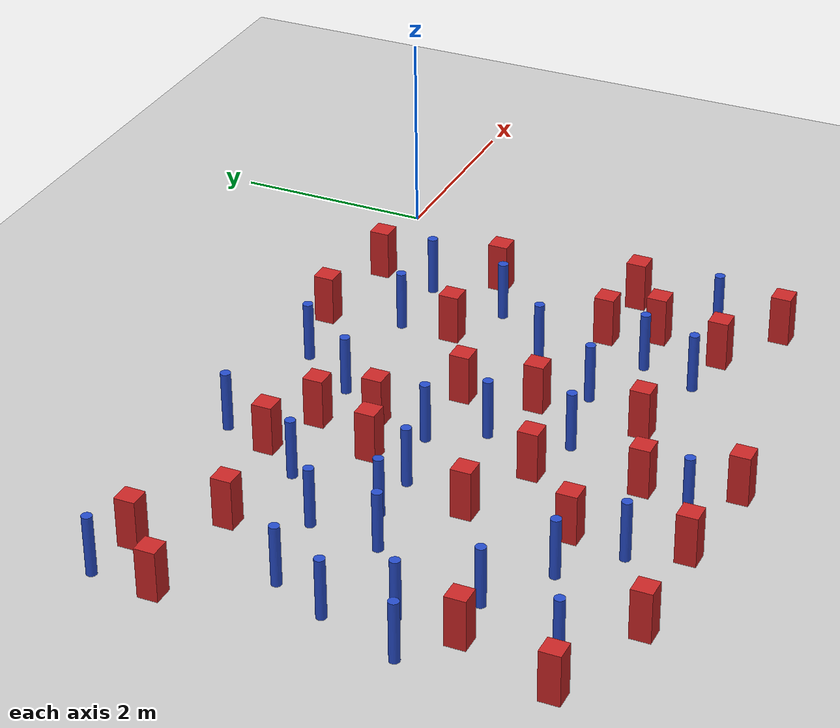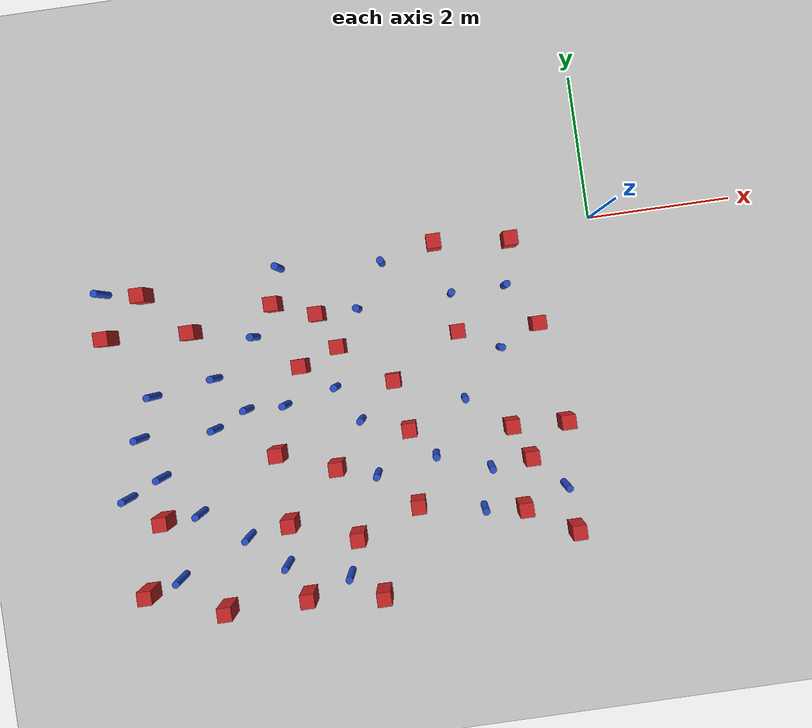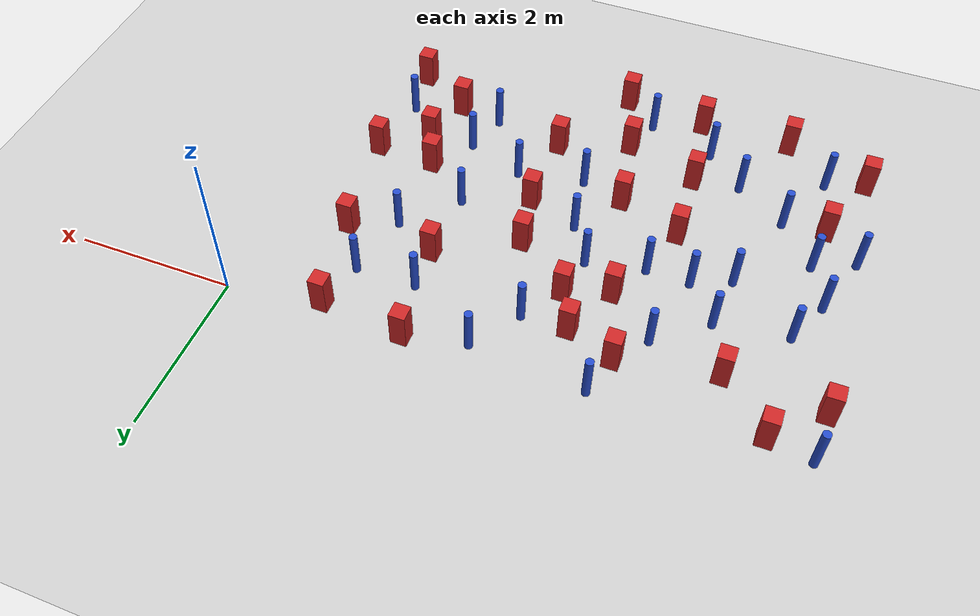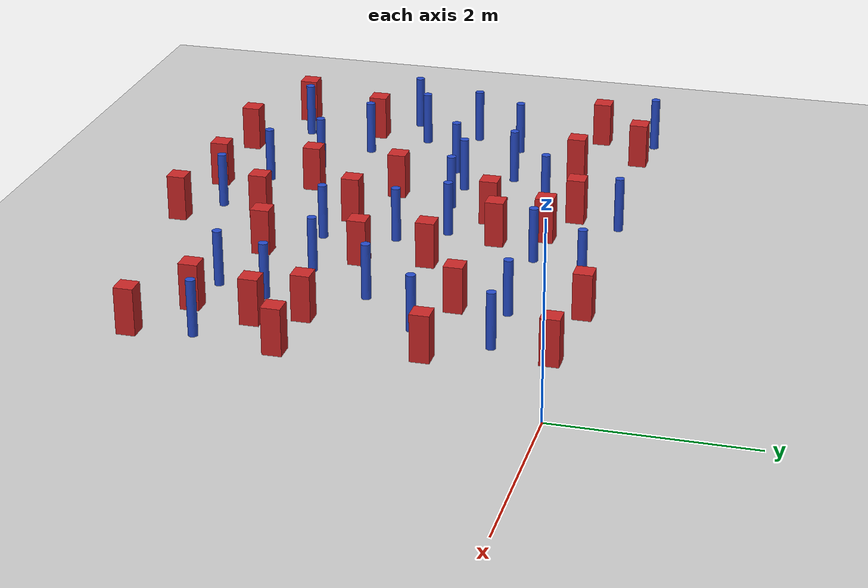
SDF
<sdf version="1.6">
 <world name="default">
  <model name="ground_plane">
   <static>1</static>
   <link name="link">
    <collision name="collision">
     <geometry><plane><normal>0 0 1</normal><size>100 100</size></plane></geometry>
     <surface><friction><ode><mu>100</mu><mu2>50</mu2></ode></friction></surface>
    </collision>
    <visual name="visual">
     <cast_shadows>0</cast_shadows>
     <geometry><plane><normal>0 0 1</normal><size>100 100</size></plane></geometry>
     <material>
      <ambient>1.0 1.0 1.0 1.0</ambient>
      <diffuse>0.8 0.8 0.8 1.0</diffuse>
      <specular>0.01 0.01 0.01 1.000000</specular>
     </material>
    </visual>
   </link>
  </model>
  <model name="square_post_obstacle4">
   <static>true</static>
   <pose>-2.22750226786 -0.0658308857675 1.91545236811e-07 -7.35059704564e-06 1.12565212e-07 2.39332434364e-05</pose>
   <link name="link">
    <pose>0 0 0.25 0 -0 0</pose>
    <inertial>
     <mass>100</mass>
     <inertia>
      <ixx>0.166667</ixx>
      <ixy>0</ixy>
      <ixz>0</ixz>
      <iyy>0.166667</iyy>
      <iyz>0</iyz>
      <izz>0.166667</izz>
     </inertia>
    </inertial>
    <collision name="collision"><geometry><box><size>.2 .2 .5</size></box></geometry></collision>
    <visual name="visual">
     <geometry><box><size>.2 .2 .5</size></box></geometry>
     <material>
      <script><name>Gazebo/Red</name><uri>file://media/materials/scripts/gazebo.material</uri></script>
     </material>
    </visual>
   </link>
  </model>
  <model name="pole_obstacle7">
   <static>true</static>
   <pose>-5.94388062194 -3.34615520025 7.38925637345e-09 -8.47170692798e-08 1.24976764937e-08 -1.74513093023e-07</pose>
   <link name="link">
    <pose>0 0 0.3 0 -0 0</pose>
    <inertial>
     <mass>1</mass>
     <inertia><ixx>0.145833</ixx><ixy>0</ixy><ixz>0</ixz><iyy>0.145833</iyy><iyz>0</iyz><izz>0.125</izz></inertia>
    </inertial>
    <collision name="collision">
     <geometry><cylinder><radius>0.05</radius><length>.6</length></cylinder></geometry>
    </collision>
    <visual name="visual">
     <geometry><cylinder><radius>0.05</radius><length>.6</length></cylinder></geometry>
     <material>
      <script><name>Gazebo/Blue</name><uri>file://media/materials/scripts/gazebo.material</uri></script>
     </material>
    </visual>
   </link>
  </model>
  <model name="square_post_obstacle6">
   <static>true</static>
   <pose>-4.73540818238 -3.65907289616 1.91545236811e-07 -7.35059704564e-06 1.12565212e-07 2.39332434364e-05</pose>
   <link name="link">
    <pose>0 0 0.25 0 -0 0</pose>
    <inertial>
     <mass>100</mass>
     <inertia>
      <ixx>0.166667</ixx>
      <ixy>0</ixy>
      <ixz>0</ixz>
      <iyy>0.166667</iyy>
      <iyz>0</iyz>
      <izz>0.166667</izz>
     </inertia>
    </inertial>
    <collision name="collision"><geometry><box><size>.2 .2 .5</size></box></geometry></collision>
    <visual name="visual">
     <geometry><box><size>.2 .2 .5</size></box></geometry>
     <material>
      <script><name>Gazebo/Red</name><uri>file://media/materials/scripts/gazebo.material</uri></script>
     </material>
    </visual>
   </link>
  </model>
  <model name="square_post_obstacle10">
   <static>true</static>
   <pose>-6.81502577648 -4.3608636634 1.91545236811e-07 -7.35059704564e-06 1.12565212e-07 2.39332434364e-05</pose>
   <link name="link">
    <pose>0 0 0.25 0 -0 0</pose>
    <inertial>
     <mass>100</mass>
     <inertia>
      <ixx>0.166667</ixx>
      <ixy>0</ixy>
      <ixz>0</ixz>
      <iyy>0.166667</iyy>
      <iyz>0</iyz>
      <izz>0.166667</izz>
     </inertia>
    </inertial>
    <collision name="collision"><geometry><box><size>.2 .2 .5</size></box></geometry></collision>
    <visual name="visual">
     <geometry><box><size>.2 .2 .5</size></box></geometry>
     <material>
      <script><name>Gazebo/Red</name><uri>file://media/materials/scripts/gazebo.material</uri></script>
     </material>
    </visual>
   </link>
  </model>
  <model name="square_post_obstacle11">
   <static>true</static>
   <pose>-2.06487871892 -1.3372170114 1.91545236811e-07 -7.35059704564e-06 1.12565212e-07 2.39332434364e-05</pose>
   <link name="link">
    <pose>0 0 0.25 0 -0 0</pose>
    <inertial>
     <mass>100</mass>
     <inertia>
      <ixx>0.166667</ixx>
      <ixy>0</ixy>
      <ixz>0</ixz>
      <iyy>0.166667</iyy>
      <iyz>0</iyz>
      <izz>0.166667</izz>
     </inertia>
    </inertial>
    <collision name="collision"><geometry><box><size>.2 .2 .5</size></box></geometry></collision>
    <visual name="visual">
     <geometry><box><size>.2 .2 .5</size></box></geometry>
     <material>
      <script><name>Gazebo/Red</name><uri>file://media/materials/scripts/gazebo.material</uri></script>
     </material>
    </visual>
   </link>
  </model>
  <model name="pole_obstacle19">
   <static>true</static>
   <pose>-2.98141069611 -0.236234702678 7.38925637345e-09 -8.47170692793e-08 1.24976764426e-08 -1.74513093041e-07</pose>
   <link name="link">
    <pose>0 0 0.3 0 -0 0</pose>
    <inertial>
     <mass>1</mass>
     <inertia><ixx>0.145833</ixx><ixy>0</ixy><ixz>0</ixz><iyy>0.145833</iyy><iyz>0</iyz><izz>0.125</izz></inertia>
    </inertial>
    <collision name="collision">
     <geometry><cylinder><radius>0.05</radius><length>.6</length></cylinder></geometry>
    </collision>
    <visual name="visual">
     <geometry><cylinder><radius>0.05</radius><length>.6</length></cylinder></geometry>
     <material>
      <script><name>Gazebo/Blue</name><uri>file://media/materials/scripts/gazebo.material</uri></script>
     </material>
    </visual>
   </link>
  </model>
  <model name="pole_obstacle26">
   <static>true</static>
   <pose>-3.55279495828 -2.36634477931 7.38925637345e-09 -8.471706928e-08 1.24976765098e-08 -1.74513093016e-07</pose>
   <link name="link">
    <pose>0 0 0.3 0 -0 0</pose>
    <inertial>
     <mass>1</mass>
     <inertia><ixx>0.145833</ixx><ixy>0</ixy><ixz>0</ixz><iyy>0.145833</iyy><iyz>0</iyz><izz>0.125</izz></inertia>
    </inertial>
    <collision name="collision">
     <geometry><cylinder><radius>0.05</radius><length>.6</length></cylinder></geometry>
    </collision>
    <visual name="visual">
     <geometry><cylinder><radius>0.05</radius><length>.6</length></cylinder></geometry>
     <material>
      <script><name>Gazebo/Blue</name><uri>file://media/materials/scripts/gazebo.material</uri></script>
     </material>
    </visual>
   </link>
  </model>
  <model name="square_post_obstacle31">
   <static>true</static>
   <pose>-5.74164734704 -0.841981144774 1.91545236811e-07 -7.35059704564e-06 1.12565212e-07 2.39332434364e-05</pose>
   <link name="link">
    <pose>0 0 0.25 0 -0 0</pose>
    <inertial>
     <mass>100</mass>
     <inertia>
      <ixx>0.166667</ixx>
      <ixy>0</ixy>
      <ixz>0</ixz>
      <iyy>0.166667</iyy>
      <iyz>0</iyz>
      <izz>0.166667</izz>
     </inertia>
    </inertial>
    <collision name="collision"><geometry><box><size>.2 .2 .5</size></box></geometry></collision>
    <visual name="visual">
     <geometry><box><size>.2 .2 .5</size></box></geometry>
     <material>
      <script><name>Gazebo/Red</name><uri>file://media/materials/scripts/gazebo.material</uri></script>
     </material>
    </visual>
   </link>
  </model>
  <model name="pole_obstacle44">
   <static>true</static>
   <pose>-6.88423760547 -0.145721273038 7.38925637345e-09 -8.471706928e-08 1.24976765188e-08 -1.74513093011e-07</pose>
   <link name="link">
    <pose>0 0 0.3 0 -0 0</pose>
    <inertial>
     <mass>1</mass>
     <inertia><ixx>0.145833</ixx><ixy>0</ixy><ixz>0</ixz><iyy>0.145833</iyy><iyz>0</iyz><izz>0.125</izz></inertia>
    </inertial>
    <collision name="collision">
     <geometry><cylinder><radius>0.05</radius><length>.6</length></cylinder></geometry>
    </collision>
    <visual name="visual">
     <geometry><cylinder><radius>0.05</radius><length>.6</length></cylinder></geometry>
     <material>
      <script><name>Gazebo/Blue</name><uri>file://media/materials/scripts/gazebo.material</uri></script>
     </material>
    </visual>
   </link>
  </model>
  <model name="pole_obstacle45">
   <static>true</static>
   <pose>-0.862436909936 -3.65951648229 7.38925637345e-09 -8.47170692799e-08 1.2497676509e-08 -1.74513093016e-07</pose>
   <link name="link">
    <pose>0 0 0.3 0 -0 0</pose>
    <inertial>
     <mass>1</mass>
     <inertia><ixx>0.145833</ixx><ixy>0</ixy><ixz>0</ixz><iyy>0.145833</iyy><iyz>0</iyz><izz>0.125</izz></inertia>
    </inertial>
    <collision name="collision">
     <geometry><cylinder><radius>0.05</radius><length>.6</length></cylinder></geometry>
    </collision>
    <visual name="visual">
     <geometry><cylinder><radius>0.05</radius><length>.6</length></cylinder></geometry>
     <material>
      <script><name>Gazebo/Blue</name><uri>file://media/materials/scripts/gazebo.material</uri></script>
     </material>
    </visual>
   </link>
  </model>
  <model name="pole_obstacle54">
   <static>true</static>
   <pose>-5.57557685346 -2.21763375589 7.38925637345e-09 -8.47170692798e-08 1.24976764937e-08 -1.74513093023e-07</pose>
   <link name="link">
    <pose>0 0 0.3 0 -0 0</pose>
    <inertial>
     <mass>1</mass>
     <inertia><ixx>0.145833</ixx><ixy>0</ixy><ixz>0</ixz><iyy>0.145833</iyy><iyz>0</iyz><izz>0.125</izz></inertia>
    </inertial>
    <collision name="collision">
     <geometry><cylinder><radius>0.05</radius><length>.6</length></cylinder></geometry>
    </collision>
    <visual name="visual">
     <geometry><cylinder><radius>0.05</radius><length>.6</length></cylinder></geometry>
     <material>
      <script><name>Gazebo/Blue</name><uri>file://media/materials/scripts/gazebo.material</uri></script>
     </material>
    </visual>
   </link>
  </model>
  <model name="pole_obstacle60">
   <static>true</static>
   <pose>-6.90901468647 -3.0073630846 7.38925637345e-09 -8.47170692798e-08 1.24976764937e-08 -1.74513093023e-07</pose>
   <link name="link">
    <pose>0 0 0.3 0 -0 0</pose>
    <inertial>
     <mass>1</mass>
     <inertia><ixx>0.145833</ixx><ixy>0</ixy><ixz>0</ixz><iyy>0.145833</iyy><iyz>0</iyz><izz>0.125</izz></inertia>
    </inertial>
    <collision name="collision">
     <geometry><cylinder><radius>0.05</radius><length>.6</length></cylinder></geometry>
    </collision>
    <visual name="visual">
     <geometry><cylinder><radius>0.05</radius><length>.6</length></cylinder></geometry>
     <material>
      <script><name>Gazebo/Blue</name><uri>file://media/materials/scripts/gazebo.material</uri></script>
     </material>
    </visual>
   </link>
  </model>
  <model name="square_post_obstacle53">
   <static>true</static>
   <pose>-3.96557642792 -0.827961382626 1.91545236811e-07 -7.35059704564e-06 1.12565212e-07 2.39332434364e-05</pose>
   <link name="link">
    <pose>0 0 0.25 0 -0 0</pose>
    <inertial>
     <mass>100</mass>
     <inertia>
      <ixx>0.166667</ixx>
      <ixy>0</ixy>
      <ixz>0</ixz>
      <iyy>0.166667</iyy>
      <iyz>0</iyz>
      <izz>0.166667</izz>
     </inertia>
    </inertial>
    <collision name="collision"><geometry><box><size>.2 .2 .5</size></box></geometry></collision>
    <visual name="visual">
     <geometry><box><size>.2 .2 .5</size></box></geometry>
     <material>
      <script><name>Gazebo/Red</name><uri>file://media/materials/scripts/gazebo.material</uri></script>
     </material>
    </visual>
   </link>
  </model>
  <model name="square_post_obstacle56">
   <static>true</static>
   <pose>-2.92931378749 -3.64690889225 1.91545236811e-07 -7.35059704564e-06 1.12565212e-07 2.39332434364e-05</pose>
   <link name="link">
    <pose>0 0 0.25 0 -0 0</pose>
    <inertial>
     <mass>100</mass>
     <inertia>
      <ixx>0.166667</ixx>
      <ixy>0</ixy>
      <ixz>0</ixz>
      <iyy>0.166667</iyy>
      <iyz>0</iyz>
      <izz>0.166667</izz>
     </inertia>
    </inertial>
    <collision name="collision"><geometry><box><size>.2 .2 .5</size></box></geometry></collision>
    <visual name="visual">
     <geometry><box><size>.2 .2 .5</size></box></geometry>
     <material>
      <script><name>Gazebo/Red</name><uri>file://media/materials/scripts/gazebo.material</uri></script>
     </material>
    </visual>
   </link>
  </model>
  <model name="square_post_obstacle59">
   <static>true</static>
   <pose>-1.17717943759 -0.168715521329 1.91545236811e-07 -7.35059704564e-06 1.12565212e-07 2.39332434364e-05</pose>
   <link name="link">
    <pose>0 0 0.25 0 -0 0</pose>
    <inertial>
     <mass>100</mass>
     <inertia>
      <ixx>0.166667</ixx>
      <ixy>0</ixy>
      <ixz>0</ixz>
      <iyy>0.166667</iyy>
      <iyz>0</iyz>
      <izz>0.166667</izz>
     </inertia>
    </inertial>
    <collision name="collision"><geometry><box><size>.2 .2 .5</size></box></geometry></collision>
    <visual name="visual">
     <geometry><box><size>.2 .2 .5</size></box></geometry>
     <material>
      <script><name>Gazebo/Red</name><uri>file://media/materials/scripts/gazebo.material</uri></script>
     </material>
    </visual>
   </link>
  </model>
  <model name="pole_obstacle76">
   <static>true</static>
   <pose>-6.63257505246 -2.20439051434 7.38925637345e-09 -8.47170692798e-08 1.24976764937e-08 -1.74513093023e-07</pose>
   <link name="link">
    <pose>0 0 0.3 0 -0 0</pose>
    <inertial>
     <mass>1</mass>
     <inertia><ixx>0.145833</ixx><ixy>0</ixy><ixz>0</ixz><iyy>0.145833</iyy><iyz>0</iyz><izz>0.125</izz></inertia>
    </inertial>
    <collision name="collision">
     <geometry><cylinder><radius>0.05</radius><length>.6</length></cylinder></geometry>
    </collision>
    <visual name="visual">
     <geometry><cylinder><radius>0.05</radius><length>.6</length></cylinder></geometry>
     <material>
      <script><name>Gazebo/Blue</name><uri>file://media/materials/scripts/gazebo.material</uri></script>
     </material>
    </visual>
   </link>
  </model>
  <model name="square_post_obstacle65">
   <static>true</static>
   <pose>-4.77397939209 -2.6804581082 1.91545236811e-07 -7.35059704564e-06 1.12565212e-07 2.39332434364e-05</pose>
   <link name="link">
    <pose>0 0 0.25 0 -0 0</pose>
    <inertial>
     <mass>100</mass>
     <inertia>
      <ixx>0.166667</ixx>
      <ixy>0</ixy>
      <ixz>0</ixz>
      <iyy>0.166667</iyy>
      <iyz>0</iyz>
      <izz>0.166667</izz>
     </inertia>
    </inertial>
    <collision name="collision"><geometry><box><size>.2 .2 .5</size></box></geometry></collision>
    <visual name="visual">
     <geometry><box><size>.2 .2 .5</size></box></geometry>
     <material>
      <script><name>Gazebo/Red</name><uri>file://media/materials/scripts/gazebo.material</uri></script>
     </material>
    </visual>
   </link>
  </model>
  <model name="square_post_obstacle67">
   <static>true</static>
   <pose>-6.34809884327 -0.239472677701 1.91545236811e-07 -7.35059704564e-06 1.12565212e-07 2.39332434364e-05</pose>
   <link name="link">
    <pose>0 0 0.25 0 -0 0</pose>
    <inertial>
     <mass>100</mass>
     <inertia>
      <ixx>0.166667</ixx>
      <ixy>0</ixy>
      <ixz>0</ixz>
      <iyy>0.166667</iyy>
      <iyz>0</iyz>
      <izz>0.166667</izz>
     </inertia>
    </inertial>
    <collision name="collision"><geometry><box><size>.2 .2 .5</size></box></geometry></collision>
    <visual name="visual">
     <geometry><box><size>.2 .2 .5</size></box></geometry>
     <material>
      <script><name>Gazebo/Red</name><uri>file://media/materials/scripts/gazebo.material</uri></script>
     </material>
    </visual>
   </link>
  </model>
  <model name="pole_obstacle81">
   <static>true</static>
   <pose>-6.37307822142 -1.64967215871 7.38925637345e-09 -8.471706928e-08 1.24976765134e-08 -1.74513093015e-07</pose>
   <link name="link">
    <pose>0 0 0.3 0 -0 0</pose>
    <inertial>
     <mass>1</mass>
     <inertia><ixx>0.145833</ixx><ixy>0</ixy><ixz>0</ixz><iyy>0.145833</iyy><iyz>0</iyz><izz>0.125</izz></inertia>
    </inertial>
    <collision name="collision">
     <geometry><cylinder><radius>0.05</radius><length>.6</length></cylinder></geometry>
    </collision>
    <visual name="visual">
     <geometry><cylinder><radius>0.05</radius><length>.6</length></cylinder></geometry>
     <material>
      <script><name>Gazebo/Blue</name><uri>file://media/materials/scripts/gazebo.material</uri></script>
     </material>
    </visual>
   </link>
  </model>
  <model name="pole_obstacle83">
   <static>true</static>
   <pose>-2.09022237962 -2.26540634989 7.38925637345e-09 -8.47170692798e-08 1.24976764939e-08 -1.74513093025e-07</pose>
   <link name="link">
    <pose>0 0 0.3 0 -0 0</pose>
    <inertial>
     <mass>1</mass>
     <inertia><ixx>0.145833</ixx><ixy>0</ixy><ixz>0</ixz><iyy>0.145833</iyy><iyz>0</iyz><izz>0.125</izz></inertia>
    </inertial>
    <collision name="collision">
     <geometry><cylinder><radius>0.05</radius><length>.6</length></cylinder></geometry>
    </collision>
    <visual name="visual">
     <geometry><cylinder><radius>0.05</radius><length>.6</length></cylinder></geometry>
     <material>
      <script><name>Gazebo/Blue</name><uri>file://media/materials/scripts/gazebo.material</uri></script>
     </material>
    </visual>
   </link>
  </model>
  <model name="square_post_obstacle73">
   <static>true</static>
   <pose>-0.7331725384 -2.77816850859 1.91545236811e-07 -7.35059704564e-06 1.12565212e-07 2.39332434364e-05</pose>
   <link name="link">
    <pose>0 0 0.25 0 -0 0</pose>
    <inertial>
     <mass>100</mass>
     <inertia>
      <ixx>0.166667</ixx>
      <ixy>0</ixy>
      <ixz>0</ixz>
      <iyy>0.166667</iyy>
      <iyz>0</iyz>
      <izz>0.166667</izz>
     </inertia>
    </inertial>
    <collision name="collision"><geometry><box><size>.2 .2 .5</size></box></geometry></collision>
    <visual name="visual">
     <geometry><box><size>.2 .2 .5</size></box></geometry>
     <material>
      <script><name>Gazebo/Red</name><uri>file://media/materials/scripts/gazebo.material</uri></script>
     </material>
    </visual>
   </link>
  </model>
  <model name="square_post_obstacle75">
   <static>true</static>
   <pose>-1.47056482709 -3.8908368284 1.91545236811e-07 -7.35059704564e-06 1.12565212e-07 2.39332434364e-05</pose>
   <link name="link">
    <pose>0 0 0.25 0 -0 0</pose>
    <inertial>
     <mass>100</mass>
     <inertia>
      <ixx>0.166667</ixx>
      <ixy>0</ixy>
      <ixz>0</ixz>
      <iyy>0.166667</iyy>
      <iyz>0</iyz>
      <izz>0.166667</izz>
     </inertia>
    </inertial>
    <collision name="collision"><geometry><box><size>.2 .2 .5</size></box></geometry></collision>
    <visual name="visual">
     <geometry><box><size>.2 .2 .5</size></box></geometry>
     <material>
      <script><name>Gazebo/Red</name><uri>file://media/materials/scripts/gazebo.material</uri></script>
     </material>
    </visual>
   </link>
  </model>
  <model name="square_post_obstacle80">
   <static>true</static>
   <pose>-3.81728191332 -3.97964767526 1.91545236811e-07 -7.35059704564e-06 1.12565212e-07 2.39332434364e-05</pose>
   <link name="link">
    <pose>0 0 0.25 0 -0 0</pose>
    <inertial>
     <mass>100</mass>
     <inertia>
      <ixx>0.166667</ixx>
      <ixy>0</ixy>
      <ixz>0</ixz>
      <iyy>0.166667</iyy>
      <iyz>0</iyz>
      <izz>0.166667</izz>
     </inertia>
    </inertial>
    <collision name="collision"><geometry><box><size>.2 .2 .5</size></box></geometry></collision>
    <visual name="visual">
     <geometry><box><size>.2 .2 .5</size></box></geometry>
     <material>
      <script><name>Gazebo/Red</name><uri>file://media/materials/scripts/gazebo.material</uri></script>
     </material>
    </visual>
   </link>
  </model>
  <model name="pole_obstacle92">
   <static>true</static>
   <pose>-1.50362877253 -1.63610454778 7.38925637345e-09 -8.471706928e-08 1.24976765079e-08 -1.74513093017e-07</pose>
   <link name="link">
    <pose>0 0 0.3 0 -0 0</pose>
    <inertial>
     <mass>1</mass>
     <inertia><ixx>0.145833</ixx><ixy>0</ixy><ixz>0</ixz><iyy>0.145833</iyy><iyz>0</iyz><izz>0.125</izz></inertia>
    </inertial>
    <collision name="collision">
     <geometry><cylinder><radius>0.05</radius><length>.6</length></cylinder></geometry>
    </collision>
    <visual name="visual">
     <geometry><cylinder><radius>0.05</radius><length>.6</length></cylinder></geometry>
     <material>
      <script><name>Gazebo/Blue</name><uri>file://media/materials/scripts/gazebo.material</uri></script>
     </material>
    </visual>
   </link>
  </model>
  <model name="pole_obstacle94">
   <static>true</static>
   <pose>-4.40679869833 -0.117076137188 7.38925637345e-09 -8.47170692799e-08 1.24976765077e-08 -1.74513093018e-07</pose>
   <link name="link">
    <pose>0 0 0.3 0 -0 0</pose>
    <inertial>
     <mass>1</mass>
     <inertia><ixx>0.145833</ixx><ixy>0</ixy><ixz>0</ixz><iyy>0.145833</iyy><iyz>0</iyz><izz>0.125</izz></inertia>
    </inertial>
    <collision name="collision">
     <geometry><cylinder><radius>0.05</radius><length>.6</length></cylinder></geometry>
    </collision>
    <visual name="visual">
     <geometry><cylinder><radius>0.05</radius><length>.6</length></cylinder></geometry>
     <material>
      <script><name>Gazebo/Blue</name><uri>file://media/materials/scripts/gazebo.material</uri></script>
     </material>
    </visual>
   </link>
  </model>
  <model name="pole_obstacle96">
   <static>true</static>
   <pose>-3.99236062209 -4.47538304341 7.38925637345e-09 -8.47170692799e-08 1.24976764985e-08 -1.74513093022e-07</pose>
   <link name="link">
    <pose>0 0 0.3 0 -0 0</pose>
    <inertial>
     <mass>1</mass>
     <inertia><ixx>0.145833</ixx><ixy>0</ixy><ixz>0</ixz><iyy>0.145833</iyy><iyz>0</iyz><izz>0.125</izz></inertia>
    </inertial>
    <collision name="collision">
     <geometry><cylinder><radius>0.05</radius><length>.6</length></cylinder></geometry>
    </collision>
    <visual name="visual">
     <geometry><cylinder><radius>0.05</radius><length>.6</length></cylinder></geometry>
     <material>
      <script><name>Gazebo/Blue</name><uri>file://media/materials/scripts/gazebo.material</uri></script>
     </material>
    </visual>
   </link>
  </model>
  <model name="pole_obstacle99">
   <static>true</static>
   <pose>-2.59130317387 -2.99053562379 7.38925637345e-09 -8.47170692798e-08 1.24976764939e-08 -1.74513093025e-07</pose>
   <link name="link">
    <pose>0 0 0.3 0 -0 0</pose>
    <inertial>
     <mass>1</mass>
     <inertia><ixx>0.145833</ixx><ixy>0</ixy><ixz>0</ixz><iyy>0.145833</iyy><iyz>0</iyz><izz>0.125</izz></inertia>
    </inertial>
    <collision name="collision">
     <geometry><cylinder><radius>0.05</radius><length>.6</length></cylinder></geometry>
    </collision>
    <visual name="visual">
     <geometry><cylinder><radius>0.05</radius><length>.6</length></cylinder></geometry>
     <material>
      <script><name>Gazebo/Blue</name><uri>file://media/materials/scripts/gazebo.material</uri></script>
     </material>
    </visual>
   </link>
  </model>
  <model name="square_post_obstacle92">
   <static>true</static>
   <pose>-3.73751621265 -1.31862667795 1.91545236811e-07 -7.35059704564e-06 1.12565212e-07 2.39332434364e-05</pose>
   <link name="link">
    <pose>0 0 0.25 0 -0 0</pose>
    <inertial>
     <mass>100</mass>
     <inertia>
      <ixx>0.166667</ixx>
      <ixy>0</ixy>
      <ixz>0</ixz>
      <iyy>0.166667</iyy>
      <iyz>0</iyz>
      <izz>0.166667</izz>
     </inertia>
    </inertial>
    <collision name="collision"><geometry><box><size>.2 .2 .5</size></box></geometry></collision>
    <visual name="visual">
     <geometry><box><size>.2 .2 .5</size></box></geometry>
     <material>
      <script><name>Gazebo/Red</name><uri>file://media/materials/scripts/gazebo.material</uri></script>
     </material>
    </visual>
   </link>
  </model>
  <model name="pole_obstacle103">
   <static>true</static>
   <pose>-3.84371440662 -1.868275788 7.38925637345e-09 -8.471706928e-08 1.24976765152e-08 -1.74513093012e-07</pose>
   <link name="link">
    <pose>0 0 0.3 0 -0 0</pose>
    <inertial>
     <mass>1</mass>
     <inertia><ixx>0.145833</ixx><ixy>0</ixy><ixz>0</ixz><iyy>0.145833</iyy><iyz>0</iyz><izz>0.125</izz></inertia>
    </inertial>
    <collision name="collision">
     <geometry><cylinder><radius>0.05</radius><length>.6</length></cylinder></geometry>
    </collision>
    <visual name="visual">
     <geometry><cylinder><radius>0.05</radius><length>.6</length></cylinder></geometry>
     <material>
      <script><name>Gazebo/Blue</name><uri>file://media/materials/scripts/gazebo.material</uri></script>
     </material>
    </visual>
   </link>
  </model>
  <model name="pole_obstacle110">
   <static>true</static>
   <pose>-2.02359654257 -3.81249796567 7.38925637345e-09 -8.47170692793e-08 1.24976764444e-08 -1.74513093039e-07</pose>
   <link name="link">
    <pose>0 0 0.3 0 -0 0</pose>
    <inertial>
     <mass>1</mass>
     <inertia><ixx>0.145833</ixx><ixy>0</ixy><ixz>0</ixz><iyy>0.145833</iyy><iyz>0</iyz><izz>0.125</izz></inertia>
    </inertial>
    <collision name="collision">
     <geometry><cylinder><radius>0.05</radius><length>.6</length></cylinder></geometry>
    </collision>
    <visual name="visual">
     <geometry><cylinder><radius>0.05</radius><length>.6</length></cylinder></geometry>
     <material>
      <script><name>Gazebo/Blue</name><uri>file://media/materials/scripts/gazebo.material</uri></script>
     </material>
    </visual>
   </link>
  </model>
  <model name="square_post_obstacle109">
   <static>true</static>
   <pose>-4.28912192892 -1.51493048483 1.91545236811e-07 -7.35059704564e-06 1.12565212e-07 2.39332434364e-05</pose>
   <link name="link">
    <pose>0 0 0.25 0 -0 0</pose>
    <inertial>
     <mass>100</mass>
     <inertia>
      <ixx>0.166667</ixx>
      <ixy>0</ixy>
      <ixz>0</ixz>
      <iyy>0.166667</iyy>
      <iyz>0</iyz>
      <izz>0.166667</izz>
     </inertia>
    </inertial>
    <collision name="collision"><geometry><box><size>.2 .2 .5</size></box></geometry></collision>
    <visual name="visual">
     <geometry><box><size>.2 .2 .5</size></box></geometry>
     <material>
      <script><name>Gazebo/Red</name><uri>file://media/materials/scripts/gazebo.material</uri></script>
     </material>
    </visual>
   </link>
  </model>
  <model name="pole_obstacle134">
   <static>true</static>
   <pose>-4.87314368583 -1.02428389079 7.38925637345e-09 -8.471706928e-08 1.24976765101e-08 -1.74513093015e-07</pose>
   <link name="link">
    <pose>0 0 0.3 0 -0 0</pose>
    <inertial>
     <mass>1</mass>
     <inertia><ixx>0.145833</ixx><ixy>0</ixy><ixz>0</ixz><iyy>0.145833</iyy><iyz>0</iyz><izz>0.125</izz></inertia>
    </inertial>
    <collision name="collision">
     <geometry><cylinder><radius>0.05</radius><length>.6</length></cylinder></geometry>
    </collision>
    <visual name="visual">
     <geometry><cylinder><radius>0.05</radius><length>.6</length></cylinder></geometry>
     <material>
      <script><name>Gazebo/Blue</name><uri>file://media/materials/scripts/gazebo.material</uri></script>
     </material>
    </visual>
   </link>
  </model>
  <model name="pole_obstacle135">
   <static>true</static>
   <pose>-2.08202143886 -0.799659344443 7.38925637345e-09 -8.471706928e-08 1.24976765177e-08 -1.74513093012e-07</pose>
   <link name="link">
    <pose>0 0 0.3 0 -0 0</pose>
    <inertial>
     <mass>1</mass>
     <inertia><ixx>0.145833</ixx><ixy>0</ixy><ixz>0</ixz><iyy>0.145833</iyy><iyz>0</iyz><izz>0.125</izz></inertia>
    </inertial>
    <collision name="collision">
     <geometry><cylinder><radius>0.05</radius><length>.6</length></cylinder></geometry>
    </collision>
    <visual name="visual">
     <geometry><cylinder><radius>0.05</radius><length>.6</length></cylinder></geometry>
     <material>
      <script><name>Gazebo/Blue</name><uri>file://media/materials/scripts/gazebo.material</uri></script>
     </material>
    </visual>
   </link>
  </model>
  <model name="square_post_obstacle134">
   <static>true</static>
   <pose>-4.61774809925 -4.71078899462 1.91545236811e-07 -7.35059704564e-06 1.12565212e-07 2.39332434364e-05</pose>
   <link name="link">
    <pose>0 0 0.25 0 -0 0</pose>
    <inertial>
     <mass>100</mass>
     <inertia>
      <ixx>0.166667</ixx>
      <ixy>0</ixy>
      <ixz>0</ixz>
      <iyy>0.166667</iyy>
      <iyz>0</iyz>
      <izz>0.166667</izz>
     </inertia>
    </inertial>
    <collision name="collision"><geometry><box><size>.2 .2 .5</size></box></geometry></collision>
    <visual name="visual">
     <geometry><box><size>.2 .2 .5</size></box></geometry>
     <material>
      <script><name>Gazebo/Red</name><uri>file://media/materials/scripts/gazebo.material</uri></script>
     </material>
    </visual>
   </link>
  </model>
  <model name="square_post_obstacle138">
   <static>true</static>
   <pose>-3.98095347135 -2.97939822098 1.91545236811e-07 -7.35059704564e-06 1.12565212e-07 2.39332434364e-05</pose>
   <link name="link">
    <pose>0 0 0.25 0 -0 0</pose>
    <inertial>
     <mass>100</mass>
     <inertia>
      <ixx>0.166667</ixx>
      <ixy>0</ixy>
      <ixz>0</ixz>
      <iyy>0.166667</iyy>
      <iyz>0</iyz>
      <izz>0.166667</izz>
     </inertia>
    </inertial>
    <collision name="collision"><geometry><box><size>.2 .2 .5</size></box></geometry></collision>
    <visual name="visual">
     <geometry><box><size>.2 .2 .5</size></box></geometry>
     <material>
      <script><name>Gazebo/Red</name><uri>file://media/materials/scripts/gazebo.material</uri></script>
     </material>
    </visual>
   </link>
  </model>
  <model name="square_post_obstacle148">
   <static>true</static>
   <pose>-3.03806844948 -1.88731373733 1.91545236811e-07 -7.35059704564e-06 1.12565212e-07 2.39332434364e-05</pose>
   <link name="link">
    <pose>0 0 0.25 0 -0 0</pose>
    <inertial>
     <mass>100</mass>
     <inertia>
      <ixx>0.166667</ixx>
      <ixy>0</ixy>
      <ixz>0</ixz>
      <iyy>0.166667</iyy>
      <iyz>0</iyz>
      <izz>0.166667</izz>
     </inertia>
    </inertial>
    <collision name="collision"><geometry><box><size>.2 .2 .5</size></box></geometry></collision>
    <visual name="visual">
     <geometry><box><size>.2 .2 .5</size></box></geometry>
     <material>
      <script><name>Gazebo/Red</name><uri>file://media/materials/scripts/gazebo.material</uri></script>
     </material>
    </visual>
   </link>
  </model>
  <model name="square_post_obstacle150">
   <static>true</static>
   <pose>-0.792779107913 -4.29560409738 1.91545236811e-07 -7.35059704564e-06 1.12565212e-07 2.39332434364e-05</pose>
   <link name="link">
    <pose>0 0 0.25 0 -0 0</pose>
    <inertial>
     <mass>100</mass>
     <inertia>
      <ixx>0.166667</ixx>
      <ixy>0</ixy>
      <ixz>0</ixz>
      <iyy>0.166667</iyy>
      <iyz>0</iyz>
      <izz>0.166667</izz>
     </inertia>
    </inertial>
    <collision name="collision"><geometry><box><size>.2 .2 .5</size></box></geometry></collision>
    <visual name="visual">
     <geometry><box><size>.2 .2 .5</size></box></geometry>
     <material>
      <script><name>Gazebo/Red</name><uri>file://media/materials/scripts/gazebo.material</uri></script>
     </material>
    </visual>
   </link>
  </model>
  <model name="square_post_obstacle156">
   <static>true</static>
   <pose>-1.49911568286 -2.73598503399 1.91545236811e-07 -7.35059704564e-06 1.12565212e-07 2.39332434364e-05</pose>
   <link name="link">
    <pose>0 0 0.25 0 -0 0</pose>
    <inertial>
     <mass>100</mass>
     <inertia>
      <ixx>0.166667</ixx>
      <ixy>0</ixy>
      <ixz>0</ixz>
      <iyy>0.166667</iyy>
      <iyz>0</iyz>
      <izz>0.166667</izz>
     </inertia>
    </inertial>
    <collision name="collision"><geometry><box><size>.2 .2 .5</size></box></geometry></collision>
    <visual name="visual">
     <geometry><box><size>.2 .2 .5</size></box></geometry>
     <material>
      <script><name>Gazebo/Red</name><uri>file://media/materials/scripts/gazebo.material</uri></script>
     </material>
    </visual>
   </link>
  </model>
  <model name="square_post_obstacle167">
   <static>true</static>
   <pose>-6.9179760603 -0.766219376828 1.91545236811e-07 -7.35059704564e-06 1.12565212e-07 2.39332434364e-05</pose>
   <link name="link">
    <pose>0 0 0.25 0 -0 0</pose>
    <inertial>
     <mass>100</mass>
     <inertia>
      <ixx>0.166667</ixx>
      <ixy>0</ixy>
      <ixz>0</ixz>
      <iyy>0.166667</iyy>
      <iyz>0</iyz>
      <izz>0.166667</izz>
     </inertia>
    </inertial>
    <collision name="collision"><geometry><box><size>.2 .2 .5</size></box></geometry></collision>
    <visual name="visual">
     <geometry><box><size>.2 .2 .5</size></box></geometry>
     <material>
      <script><name>Gazebo/Red</name><uri>file://media/materials/scripts/gazebo.material</uri></script>
     </material>
    </visual>
   </link>
  </model>
  <model name="square_post_obstacle171">
   <static>true</static>
   <pose>-1.29175986971 -3.20224305962 1.91545236811e-07 -7.35059704564e-06 1.12565212e-07 2.39332434364e-05</pose>
   <link name="link">
    <pose>0 0 0.25 0 -0 0</pose>
    <inertial>
     <mass>100</mass>
     <inertia>
      <ixx>0.166667</ixx>
      <ixy>0</ixy>
      <ixz>0</ixz>
      <iyy>0.166667</iyy>
      <iyz>0</iyz>
      <izz>0.166667</izz>
     </inertia>
    </inertial>
    <collision name="collision"><geometry><box><size>.2 .2 .5</size></box></geometry></collision>
    <visual name="visual">
     <geometry><box><size>.2 .2 .5</size></box></geometry>
     <material>
      <script><name>Gazebo/Red</name><uri>file://media/materials/scripts/gazebo.material</uri></script>
     </material>
    </visual>
   </link>
  </model>
  <model name="pole_obstacle180">
   <static>true</static>
   <pose>-5.10457354169 -2.00496358759 7.38925637345e-09 -8.471706928e-08 1.2497676506e-08 -1.74513093017e-07</pose>
   <link name="link">
    <pose>0 0 0.3 0 -0 0</pose>
    <inertial>
     <mass>1</mass>
     <inertia><ixx>0.145833</ixx><ixy>0</ixy><ixz>0</ixz><iyy>0.145833</iyy><iyz>0</iyz><izz>0.125</izz></inertia>
    </inertial>
    <collision name="collision">
     <geometry><cylinder><radius>0.05</radius><length>.6</length></cylinder></geometry>
    </collision>
    <visual name="visual">
     <geometry><cylinder><radius>0.05</radius><length>.6</length></cylinder></geometry>
     <material>
      <script><name>Gazebo/Blue</name><uri>file://media/materials/scripts/gazebo.material</uri></script>
     </material>
    </visual>
   </link>
  </model>
  <model name="square_post_obstacle180">
   <static>true</static>
   <pose>-5.76424267718 -4.73267825555 1.91545236811e-07 -7.35059704564e-06 1.12565212e-07 2.39332434364e-05</pose>
   <link name="link">
    <pose>0 0 0.25 0 -0 0</pose>
    <inertial>
     <mass>100</mass>
     <inertia>
      <ixx>0.166667</ixx>
      <ixy>0</ixy>
      <ixz>0</ixz>
      <iyy>0.166667</iyy>
      <iyz>0</iyz>
      <izz>0.166667</izz>
     </inertia>
    </inertial>
    <collision name="collision"><geometry><box><size>.2 .2 .5</size></box></geometry></collision>
    <visual name="visual">
     <geometry><box><size>.2 .2 .5</size></box></geometry>
     <material>
      <script><name>Gazebo/Red</name><uri>file://media/materials/scripts/gazebo.material</uri></script>
     </material>
    </visual>
   </link>
  </model>
  <model name="pole_obstacle181">
   <static>true</static>
   <pose>-6.32926447148 -4.20570229769 7.38925637345e-09 -8.47170692796e-08 1.24976764786e-08 -1.74513093032e-07</pose>
   <link name="link">
    <pose>0 0 0.3 0 -0 0</pose>
    <inertial>
     <mass>1</mass>
     <inertia><ixx>0.145833</ixx><ixy>0</ixy><ixz>0</ixz><iyy>0.145833</iyy><iyz>0</iyz><izz>0.125</izz></inertia>
    </inertial>
    <collision name="collision">
     <geometry><cylinder><radius>0.05</radius><length>.6</length></cylinder></geometry>
    </collision>
    <visual name="visual">
     <geometry><cylinder><radius>0.05</radius><length>.6</length></cylinder></geometry>
     <material>
      <script><name>Gazebo/Blue</name><uri>file://media/materials/scripts/gazebo.material</uri></script>
     </material>
    </visual>
   </link>
  </model>
  <model name="square_post_obstacle182">
   <static>true</static>
   <pose>-3.57067647708 -4.8256587301 1.91545236811e-07 -7.35059704564e-06 1.12565212e-07 2.39332434364e-05</pose>
   <link name="link">
    <pose>0 0 0.25 0 -0 0</pose>
    <inertial>
     <mass>100</mass>
     <inertia>
      <ixx>0.166667</ixx>
      <ixy>0</ixy>
      <ixz>0</ixz>
      <iyy>0.166667</iyy>
      <iyz>0</iyz>
      <izz>0.166667</izz>
     </inertia>
    </inertial>
    <collision name="collision"><geometry><box><size>.2 .2 .5</size></box></geometry></collision>
    <visual name="visual">
     <geometry><box><size>.2 .2 .5</size></box></geometry>
     <material>
      <script><name>Gazebo/Red</name><uri>file://media/materials/scripts/gazebo.material</uri></script>
     </material>
    </visual>
   </link>
  </model>
  <model name="pole_obstacle183">
   <static>true</static>
   <pose>-4.83848557065 -4.21399602477 7.38925637345e-09 -8.47170692796e-08 1.24976764786e-08 -1.74513093032e-07</pose>
   <link name="link">
    <pose>0 0 0.3 0 -0 0</pose>
    <inertial>
     <mass>1</mass>
     <inertia><ixx>0.145833</ixx><ixy>0</ixy><ixz>0</ixz><iyy>0.145833</iyy><iyz>0</iyz><izz>0.125</izz></inertia>
    </inertial>
    <collision name="collision">
     <geometry><cylinder><radius>0.05</radius><length>.6</length></cylinder></geometry>
    </collision>
    <visual name="visual">
     <geometry><cylinder><radius>0.05</radius><length>.6</length></cylinder></geometry>
     <material>
      <script><name>Gazebo/Blue</name><uri>file://media/materials/scripts/gazebo.material</uri></script>
     </material>
    </visual>
   </link>
  </model>
  <model name="pole_obstacle184">
   <static>true</static>
   <pose>-5.48784877902 -1.51883947463 7.38925637345e-09 -8.471706928e-08 1.24976765134e-08 -1.74513093015e-07</pose>
   <link name="link">
    <pose>0 0 0.3 0 -0 0</pose>
    <inertial>
     <mass>1</mass>
     <inertia><ixx>0.145833</ixx><ixy>0</ixy><ixz>0</ixz><iyy>0.145833</iyy><iyz>0</iyz><izz>0.125</izz></inertia>
    </inertial>
    <collision name="collision">
     <geometry><cylinder><radius>0.05</radius><length>.6</length></cylinder></geometry>
    </collision>
    <visual name="visual">
     <geometry><cylinder><radius>0.05</radius><length>.6</length></cylinder></geometry>
     <material>
      <script><name>Gazebo/Blue</name><uri>file://media/materials/scripts/gazebo.material</uri></script>
     </material>
    </visual>
   </link>
  </model>
  <model name="pole_obstacle186">
   <static>true</static>
   <pose>-6.40150181885 -2.77898577577 7.38925637345e-09 -8.47170692798e-08 1.24976764937e-08 -1.74513093023e-07</pose>
   <link name="link">
    <pose>0 0 0.3 0 -0 0</pose>
    <inertial>
     <mass>1</mass>
     <inertia><ixx>0.145833</ixx><ixy>0</ixy><ixz>0</ixz><iyy>0.145833</iyy><iyz>0</iyz><izz>0.125</izz></inertia>
    </inertial>
    <collision name="collision">
     <geometry><cylinder><radius>0.05</radius><length>.6</length></cylinder></geometry>
    </collision>
    <visual name="visual">
     <geometry><cylinder><radius>0.05</radius><length>.6</length></cylinder></geometry>
     <material>
      <script><name>Gazebo/Blue</name><uri>file://media/materials/scripts/gazebo.material</uri></script>
     </material>
    </visual>
   </link>
  </model>
  <model name="pole_obstacle188">
   <static>true</static>
   <pose>-1.32186301556 -0.789940812286 7.38925637345e-09 -8.47170692799e-08 1.24976765075e-08 -1.74513093017e-07</pose>
   <link name="link">
    <pose>0 0 0.3 0 -0 0</pose>
    <inertial>
     <mass>1</mass>
     <inertia><ixx>0.145833</ixx><ixy>0</ixy><ixz>0</ixz><iyy>0.145833</iyy><iyz>0</iyz><izz>0.125</izz></inertia>
    </inertial>
    <collision name="collision">
     <geometry><cylinder><radius>0.05</radius><length>.6</length></cylinder></geometry>
    </collision>
    <visual name="visual">
     <geometry><cylinder><radius>0.05</radius><length>.6</length></cylinder></geometry>
     <material>
      <script><name>Gazebo/Blue</name><uri>file://media/materials/scripts/gazebo.material</uri></script>
     </material>
    </visual>
   </link>
  </model>
  <model name="pole_obstacle194">
   <static>true</static>
   <pose>-3.43378194081 -3.14375380644 7.38925637345e-09 -8.47170692798e-08 1.24976764939e-08 -1.74513093025e-07</pose>
   <link name="link">
    <pose>0 0 0.3 0 -0 0</pose>
    <inertial>
     <mass>1</mass>
     <inertia><ixx>0.145833</ixx><ixy>0</ixy><ixz>0</ixz><iyy>0.145833</iyy><iyz>0</iyz><izz>0.125</izz></inertia>
    </inertial>
    <collision name="collision">
     <geometry><cylinder><radius>0.05</radius><length>.6</length></cylinder></geometry>
    </collision>
    <visual name="visual">
     <geometry><cylinder><radius>0.05</radius><length>.6</length></cylinder></geometry>
     <material>
      <script><name>Gazebo/Blue</name><uri>file://media/materials/scripts/gazebo.material</uri></script>
     </material>
    </visual>
   </link>
  </model>
  <model name="pole_obstacle198">
   <static>true</static>
   <pose>-4.5672410145 -2.01897770817 7.38925637345e-09 -8.471706928e-08 1.2497676506e-08 -1.74513093017e-07</pose>
   <link name="link">
    <pose>0 0 0.3 0 -0 0</pose>
    <inertial>
     <mass>1</mass>
     <inertia><ixx>0.145833</ixx><ixy>0</ixy><ixz>0</ixz><iyy>0.145833</iyy><iyz>0</iyz><izz>0.125</izz></inertia>
    </inertial>
    <collision name="collision">
     <geometry><cylinder><radius>0.05</radius><length>.6</length></cylinder></geometry>
    </collision>
    <visual name="visual">
     <geometry><cylinder><radius>0.05</radius><length>.6</length></cylinder></geometry>
     <material>
      <script><name>Gazebo/Blue</name><uri>file://media/materials/scripts/gazebo.material</uri></script>
     </material>
    </visual>
   </link>
  </model>
  <model name="pole_obstacle200">
   <static>true</static>
   <pose>-3.39550979792 -0.833938157243 7.38925637345e-09 -8.471706928e-08 1.24976765177e-08 -1.74513093012e-07</pose>
   <link name="link">
    <pose>0 0 0.3 0 -0 0</pose>
    <inertial>
     <mass>1</mass>
     <inertia><ixx>0.145833</ixx><ixy>0</ixy><ixz>0</ixz><iyy>0.145833</iyy><iyz>0</iyz><izz>0.125</izz></inertia>
    </inertial>
    <collision name="collision">
     <geometry><cylinder><radius>0.05</radius><length>.6</length></cylinder></geometry>
    </collision>
    <visual name="visual">
     <geometry><cylinder><radius>0.05</radius><length>.6</length></cylinder></geometry>
     <material>
      <script><name>Gazebo/Blue</name><uri>file://media/materials/scripts/gazebo.material</uri></script>
     </material>
    </visual>
   </link>
  </model>
  <model name="square_post_obstacle209">
   <static>true</static>
   <pose>-4.55310067294 -0.609025138604 1.91545236811e-07 -7.35059704564e-06 1.12565212e-07 2.39332434364e-05</pose>
   <link name="link">
    <pose>0 0 0.25 0 -0 0</pose>
    <inertial>
     <mass>100</mass>
     <inertia>
      <ixx>0.166667</ixx>
      <ixy>0</ixy>
      <ixz>0</ixz>
      <iyy>0.166667</iyy>
      <iyz>0</iyz>
      <izz>0.166667</izz>
     </inertia>
    </inertial>
    <collision name="collision"><geometry><box><size>.2 .2 .5</size></box></geometry></collision>
    <visual name="visual">
     <geometry><box><size>.2 .2 .5</size></box></geometry>
     <material>
      <script><name>Gazebo/Red</name><uri>file://media/materials/scripts/gazebo.material</uri></script>
     </material>
    </visual>
   </link>
  </model>
  <model name="square_post_obstacle210">
   <static>true</static>
   <pose>-0.947366676686 -1.37595080672 1.91545236811e-07 -7.35059704564e-06 1.12565212e-07 2.39332434364e-05</pose>
   <link name="link">
    <pose>0 0 0.25 0 -0 0</pose>
    <inertial>
     <mass>100</mass>
     <inertia>
      <ixx>0.166667</ixx>
      <ixy>0</ixy>
      <ixz>0</ixz>
      <iyy>0.166667</iyy>
      <iyz>0</iyz>
      <izz>0.166667</izz>
     </inertia>
    </inertial>
    <collision name="collision"><geometry><box><size>.2 .2 .5</size></box></geometry></collision>
    <visual name="visual">
     <geometry><box><size>.2 .2 .5</size></box></geometry>
     <material>
      <script><name>Gazebo/Red</name><uri>file://media/materials/scripts/gazebo.material</uri></script>
     </material>
    </visual>
   </link>
  </model>
  <model name="square_post_obstacle211">
   <static>true</static>
   <pose>-6.46977486472 -3.39000115212 1.91545236811e-07 -7.35059704564e-06 1.12565212e-07 2.39332434364e-05</pose>
   <link name="link">
    <pose>0 0 0.25 0 -0 0</pose>
    <inertial>
     <mass>100</mass>
     <inertia>
      <ixx>0.166667</ixx>
      <ixy>0</ixy>
      <ixz>0</ixz>
      <iyy>0.166667</iyy>
      <iyz>0</iyz>
      <izz>0.166667</izz>
     </inertia>
    </inertial>
    <collision name="collision"><geometry><box><size>.2 .2 .5</size></box></geometry></collision>
    <visual name="visual">
     <geometry><box><size>.2 .2 .5</size></box></geometry>
     <material>
      <script><name>Gazebo/Red</name><uri>file://media/materials/scripts/gazebo.material</uri></script>
     </material>
    </visual>
   </link>
  </model>
  <model name="square_post_obstacle217">
   <static>true</static>
   <pose>-2.91366763506 -2.58840304893 1.91545236811e-07 -7.35059704564e-06 1.12565212e-07 2.39332434364e-05</pose>
   <link name="link">
    <pose>0 0 0.25 0 -0 0</pose>
    <inertial>
     <mass>100</mass>
     <inertia>
      <ixx>0.166667</ixx>
      <ixy>0</ixy>
      <ixz>0</ixz>
      <iyy>0.166667</iyy>
      <iyz>0</iyz>
      <izz>0.166667</izz>
     </inertia>
    </inertial>
    <collision name="collision"><geometry><box><size>.2 .2 .5</size></box></geometry></collision>
    <visual name="visual">
     <geometry><box><size>.2 .2 .5</size></box></geometry>
     <material>
      <script><name>Gazebo/Red</name><uri>file://media/materials/scripts/gazebo.material</uri></script>
     </material>
    </visual>
   </link>
  </model>
  <model name="pole_obstacle210">
   <static>true</static>
   <pose>-5.31940999043 -3.76026997922 7.38925637345e-09 -8.47170692799e-08 1.24976765028e-08 -1.74513093019e-07</pose>
   <link name="link">
    <pose>0 0 0.3 0 -0 0</pose>
    <inertial>
     <mass>1</mass>
     <inertia><ixx>0.145833</ixx><ixy>0</ixy><ixz>0</ixz><iyy>0.145833</iyy><iyz>0</iyz><izz>0.125</izz></inertia>
    </inertial>
    <collision name="collision">
     <geometry><cylinder><radius>0.05</radius><length>.6</length></cylinder></geometry>
    </collision>
    <visual name="visual">
     <geometry><cylinder><radius>0.05</radius><length>.6</length></cylinder></geometry>
     <material>
      <script><name>Gazebo/Blue</name><uri>file://media/materials/scripts/gazebo.material</uri></script>
     </material>
    </visual>
   </link>
  </model>
  <model name="pole_obstacle230">
   <static>true</static>
   <pose>-1.85476999043 -3.26131997922 7.38925637345e-09 -8.47170692793e-08 1.24976764479e-08 -1.74513093037e-07</pose>
   <link name="link">
    <pose>0 0 0.3 0 -0 0</pose>
    <inertial>
     <mass>1</mass>
     <inertia><ixx>0.145833</ixx><ixy>0</ixy><ixz>0</ixz><iyy>0.145833</iyy><iyz>0</iyz><izz>0.125</izz></inertia>
    </inertial>
    <collision name="collision">
     <geometry><cylinder><radius>0.05</radius><length>.6</length></cylinder></geometry>
    </collision>
    <visual name="visual">
     <geometry><cylinder><radius>0.05</radius><length>.6</length></cylinder></geometry>
     <material>
      <script><name>Gazebo/Blue</name><uri>file://media/materials/scripts/gazebo.material</uri></script>
     </material>
    </visual>
   </link>
  </model>
 </world>
</sdf>
